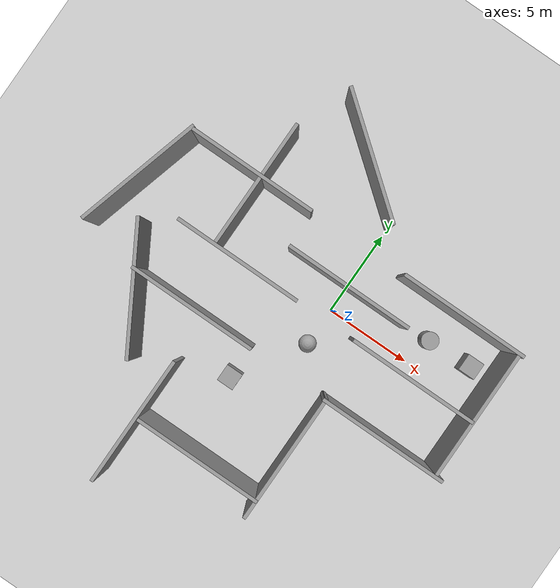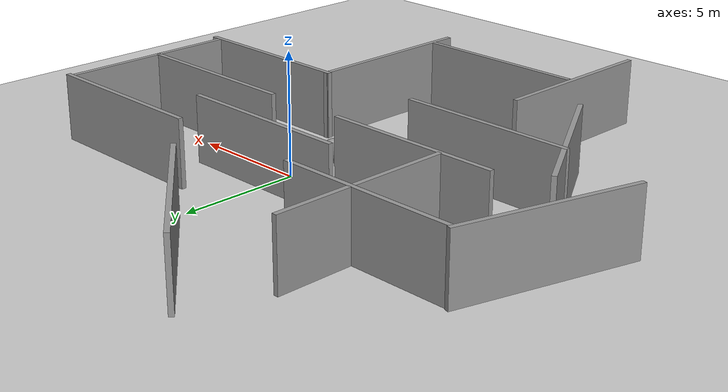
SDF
<sdf version="1.6">
 <world name="default">
  <light name="sun" type="directional">
   <pose>0 0 10 0 -0 0</pose>
   <diffuse>0.8 0.8 0.8 1</diffuse>
   <specular>0.1 0.1 0.1 1</specular>
   <attenuation>
    <range>1000</range>
    <constant>0.9</constant>
    <linear>0.01</linear>
    <quadratic>0.001</quadratic>
   </attenuation>
   <direction>-0.5 0.5 -1</direction>
  </light>
  <model name="ground_plane">
   <static>1</static>
   <link name="link">
    <collision name="collision">
     <geometry><plane><normal>0 0 1</normal><size>100 100</size></plane></geometry>
     <surface><friction><ode><mu>100</mu><mu2>50</mu2></ode></friction></surface>
    </collision>
    <visual name="visual">
     <cast_shadows>0</cast_shadows>
     <geometry><plane><normal>0 0 1</normal><size>100 100</size></plane></geometry>
     <material>
      <script><uri>file://media/materials/scripts/gazebo.material</uri><name>Gazebo/Grey</name></script>
     </material>
    </visual>
   </link>
  </model>
  <gravity>0 0 -9.8</gravity>
  <magnetic_field>6e-06 2.3e-05 -4.2e-05</magnetic_field>
  <atmosphere type="adiabatic"/>
  <physics name="default_physics" default="0" type="ode">
   <max_step_size>0.001</max_step_size>
   <real_time_factor>1</real_time_factor>
   <real_time_update_rate>1000</real_time_update_rate>
  </physics>
  <scene><ambient>0.4 0.4 0.4 1</ambient><background>0.7 0.7 0.7 1</background><shadows>1</shadows></scene>
  <spherical_coordinates>
   <surface_model>EARTH_WGS84</surface_model>
   <latitude_deg>0</latitude_deg>
   <longitude_deg>0</longitude_deg>
   <elevation>0</elevation>
   <heading_deg>0</heading_deg>
  </spherical_coordinates>
  <model name="grey_wall">
   <static>1</static>
   <link name="link">
    <pose>0 0 1.4 0 -0 0</pose>
    <collision name="collision"><geometry><box><size>7.5 0.2 2.8</size></box></geometry></collision>
    <visual name="visual">
     <cast_shadows>0</cast_shadows>
     <geometry><box><size>7.5 0.2 2.8</size></box></geometry>
     <material>
      <script>
       <uri>model://grey_wall/materials/scripts</uri>
       <uri>model://grey_wall/materials/textures</uri>
       <name>vrc/grey_wall</name>
      </script>
     </material>
    </visual>
   </link>
   <pose>-0.079779 1.47879 0 0 -0 0</pose>
  </model>
  <model name="grey_wall_clone">
   <static>1</static>
   <link name="link">
    <pose>0 0 1.4 0 -0 0</pose>
    <collision name="collision"><geometry><box><size>7.5 0.2 2.8</size></box></geometry></collision>
    <visual name="visual">
     <cast_shadows>0</cast_shadows>
     <geometry><box><size>7.5 0.2 2.8</size></box></geometry>
     <material>
      <script>
       <uri>model://grey_wall/materials/scripts</uri>
       <uri>model://grey_wall/materials/textures</uri>
       <name>vrc/grey_wall</name>
      </script>
     </material>
    </visual>
   </link>
   <pose>-5.29603 -10.5565 0 0 -0 1.57</pose>
  </model>
  <model name="grey_wall_clone_0">
   <static>1</static>
   <link name="link">
    <pose>0 0 1.4 0 -0 0</pose>
    <collision name="collision"><geometry><box><size>7.5 0.2 2.8</size></box></geometry></collision>
    <visual name="visual">
     <cast_shadows>0</cast_shadows>
     <geometry><box><size>7.5 0.2 2.8</size></box></geometry>
     <material>
      <script>
       <uri>model://grey_wall/materials/scripts</uri>
       <uri>model://grey_wall/materials/textures</uri>
       <name>vrc/grey_wall</name>
      </script>
     </material>
    </visual>
   </link>
   <pose>-1.41758 -10.3406 0 0 -0 0</pose>
  </model>
  <model name="grey_wall_clone_1">
   <static>1</static>
   <link name="link">
    <pose>0 0 1.4 0 -0 0</pose>
    <collision name="collision"><geometry><box><size>7.5 0.2 2.8</size></box></geometry></collision>
    <visual name="visual">
     <cast_shadows>0</cast_shadows>
     <geometry><box><size>7.5 0.2 2.8</size></box></geometry>
     <material>
      <script>
       <uri>model://grey_wall/materials/scripts</uri>
       <uri>model://grey_wall/materials/textures</uri>
       <name>vrc/grey_wall</name>
      </script>
     </material>
    </visual>
   </link>
   <pose>-2.94531 7.72193 0 0 0 -0.666327</pose>
  </model>
  <model name="grey_wall_clone_2">
   <static>1</static>
   <link name="link">
    <pose>0 0 1.4 0 -0 0</pose>
    <collision name="collision"><geometry><box><size>7.5 0.2 2.8</size></box></geometry></collision>
    <visual name="visual">
     <cast_shadows>0</cast_shadows>
     <geometry><box><size>7.5 0.2 2.8</size></box></geometry>
     <material>
      <script>
       <uri>model://grey_wall/materials/scripts</uri>
       <uri>model://grey_wall/materials/textures</uri>
       <name>vrc/grey_wall</name>
      </script>
     </material>
    </visual>
   </link>
   <pose>-5.60224 -0.641637 0 0 -0 0</pose>
  </model>
  <model name="grey_wall_clone_3">
   <static>1</static>
   <link name="link">
    <pose>0 0 1.4 0 -0 0</pose>
    <collision name="collision"><geometry><box><size>7.5 0.2 2.8</size></box></geometry></collision>
    <visual name="visual">
     <cast_shadows>0</cast_shadows>
     <geometry><box><size>7.5 0.2 2.8</size></box></geometry>
     <material>
      <script>
       <uri>model://grey_wall/materials/scripts</uri>
       <uri>model://grey_wall/materials/textures</uri>
       <name>vrc/grey_wall</name>
      </script>
     </material>
    </visual>
   </link>
   <pose>5.4298 -0.648864 0 0 -0 0</pose>
  </model>
  <model name="grey_wall_clone_4">
   <static>1</static>
   <link name="link">
    <pose>0 0 1.4 0 -0 0</pose>
    <collision name="collision"><geometry><box><size>7.5 0.2 2.8</size></box></geometry></collision>
    <visual name="visual">
     <cast_shadows>0</cast_shadows>
     <geometry><box><size>7.5 0.2 2.8</size></box></geometry>
     <material>
      <script>
       <uri>model://grey_wall/materials/scripts</uri>
       <uri>model://grey_wall/materials/textures</uri>
       <name>vrc/grey_wall</name>
      </script>
     </material>
    </visual>
   </link>
   <pose>-7.61205 3.60455 0 0 -0 0</pose>
  </model>
  <model name="grey_wall_clone_5">
   <static>1</static>
   <link name="link">
    <pose>0 0 1.4 0 -0 0</pose>
    <collision name="collision"><geometry><box><size>7.5 0.2 2.8</size></box></geometry></collision>
    <visual name="visual">
     <cast_shadows>0</cast_shadows>
     <geometry><box><size>7.5 0.2 2.8</size></box></geometry>
     <material>
      <script>
       <uri>model://grey_wall/materials/scripts</uri>
       <uri>model://grey_wall/materials/textures</uri>
       <name>vrc/grey_wall</name>
      </script>
     </material>
    </visual>
   </link>
   <pose>5.67234 3.64138 0 0 -0 0</pose>
  </model>
  <model name="grey_wall_clone_6">
   <static>1</static>
   <link name="link">
    <pose>0 0 1.4 0 -0 0</pose>
    <collision name="collision"><geometry><box><size>7.5 0.2 2.8</size></box></geometry></collision>
    <visual name="visual">
     <cast_shadows>0</cast_shadows>
     <geometry><box><size>7.5 0.2 2.8</size></box></geometry>
     <material>
      <script>
       <uri>model://grey_wall/materials/scripts</uri>
       <uri>model://grey_wall/materials/textures</uri>
       <name>vrc/grey_wall</name>
      </script>
     </material>
    </visual>
   </link>
   <pose>-7.05604 3.12773 0 0 -0 1.57</pose>
  </model>
  <model name="grey_wall_clone_7">
   <static>1</static>
   <link name="link">
    <pose>0 0 1.4 0 -0 0</pose>
    <collision name="collision"><geometry><box><size>7.5 0.2 2.8</size></box></geometry></collision>
    <visual name="visual">
     <cast_shadows>0</cast_shadows>
     <geometry><box><size>7.5 0.2 2.8</size></box></geometry>
     <material>
      <script>
       <uri>model://grey_wall/materials/scripts</uri>
       <uri>model://grey_wall/materials/textures</uri>
       <name>vrc/grey_wall</name>
      </script>
     </material>
    </visual>
   </link>
   <pose>9.14609 -0.194442 0 0 -0 1.57</pose>
  </model>
  <model name="grey_wall_clone_8">
   <static>1</static>
   <link name="link">
    <pose>0 0 1.4 0 -0 0</pose>
    <collision name="collision"><geometry><box><size>7.5 0.2 2.8</size></box></geometry></collision>
    <visual name="visual">
     <cast_shadows>0</cast_shadows>
     <geometry><box><size>7.5 0.2 2.8</size></box></geometry>
     <material>
      <script>
       <uri>model://grey_wall/materials/scripts</uri>
       <uri>model://grey_wall/materials/textures</uri>
       <name>vrc/grey_wall</name>
      </script>
     </material>
    </visual>
   </link>
   <pose>-6.14069 -4.03298 0 0 -0 0</pose>
  </model>
  <model name="grey_wall_clone_9">
   <static>1</static>
   <link name="link">
    <pose>0 0 1.4 0 -0 0</pose>
    <collision name="collision"><geometry><box><size>7.5 0.2 2.8</size></box></geometry></collision>
    <visual name="visual">
     <cast_shadows>0</cast_shadows>
     <geometry><box><size>7.5 0.2 2.8</size></box></geometry>
     <material>
      <script>
       <uri>model://grey_wall/materials/scripts</uri>
       <uri>model://grey_wall/materials/textures</uri>
       <name>vrc/grey_wall</name>
      </script>
     </material>
    </visual>
   </link>
   <pose>5.86823 -4.04531 0 0 -0 0</pose>
  </model>
  <model name="grey_wall_clone_10">
   <static>1</static>
   <link name="link">
    <pose>0 0 1.4 0 -0 0</pose>
    <collision name="collision"><geometry><box><size>7.5 0.2 2.8</size></box></geometry></collision>
    <visual name="visual">
     <cast_shadows>0</cast_shadows>
     <geometry><box><size>7.5 0.2 2.8</size></box></geometry>
     <material>
      <script>
       <uri>model://grey_wall/materials/scripts</uri>
       <uri>model://grey_wall/materials/textures</uri>
       <name>vrc/grey_wall</name>
      </script>
     </material>
    </visual>
   </link>
   <pose>2.26323 -7.66943 0 0 -0 1.57</pose>
  </model>
  <model name="grey_wall_clone_11">
   <static>1</static>
   <link name="link">
    <pose>0 0 1.4 0 -0 0</pose>
    <collision name="collision"><geometry><box><size>7.5 0.2 2.8</size></box></geometry></collision>
    <visual name="visual">
     <cast_shadows>0</cast_shadows>
     <geometry><box><size>7.5 0.2 2.8</size></box></geometry>
     <material>
      <script>
       <uri>model://grey_wall/materials/scripts</uri>
       <uri>model://grey_wall/materials/textures</uri>
       <name>vrc/grey_wall</name>
      </script>
     </material>
    </visual>
   </link>
   <pose>-12.4084 0.162192 0 0 -0 1.29673</pose>
  </model>
  <model name="grey_wall_clone_12">
   <static>1</static>
   <link name="link">
    <pose>0 0 1.4 0 -0 0</pose>
    <collision name="collision"><geometry><box><size>7.5 0.2 2.8</size></box></geometry></collision>
    <visual name="visual">
     <cast_shadows>0</cast_shadows>
     <geometry><box><size>7.5 0.2 2.8</size></box></geometry>
     <material>
      <script>
       <uri>model://grey_wall/materials/scripts</uri>
       <uri>model://grey_wall/materials/textures</uri>
       <name>vrc/grey_wall</name>
      </script>
     </material>
    </visual>
   </link>
   <pose>-9.21832 -4.93687 0 0 -0 2.09793</pose>
  </model>
  <model name="unit_cylinder">
   <pose>5.30109 1.69321 0.499997 4e-06 3e-06 -0</pose>
   <link name="link">
    <inertial>
     <mass>1</mass>
     <inertia><ixx>0.145833</ixx><ixy>0</ixy><ixz>0</ixz><iyy>0.145833</iyy><iyz>0</iyz><izz>0.125</izz></inertia>
    </inertial>
    <collision name="collision">
     <geometry><cylinder><radius>0.5</radius><length>1</length></cylinder></geometry>
    </collision>
    <visual name="visual">
     <geometry><cylinder><radius>0.5</radius><length>1</length></cylinder></geometry>
     <material>
      <script><name>Gazebo/Grey</name><uri>file://media/materials/scripts/gazebo.material</uri></script>
     </material>
    </visual>
   </link>
  </model>
  <model name="unit_box">
   <pose>-2.50558 -6.11762 0.499995 0 1e-05 0</pose>
   <link name="link">
    <inertial>
     <mass>1</mass>
     <inertia>
      <ixx>0.166667</ixx>
      <ixy>0</ixy>
      <ixz>0</ixz>
      <iyy>0.166667</iyy>
      <iyz>0</iyz>
      <izz>0.166667</izz>
     </inertia>
    </inertial>
    <collision name="collision"><geometry><box><size>1 1 1</size></box></geometry></collision>
    <visual name="visual">
     <geometry><box><size>1 1 1</size></box></geometry>
     <material>
      <script><name>Gazebo/Grey</name><uri>file://media/materials/scripts/gazebo.material</uri></script>
     </material>
    </visual>
   </link>
  </model>
  <model name="unit_box_0">
   <pose>7.95605 1.80221 0.499995 -1e-05 0 0</pose>
   <link name="link">
    <inertial>
     <mass>1</mass>
     <inertia>
      <ixx>0.166667</ixx>
      <ixy>0</ixy>
      <ixz>0</ixz>
      <iyy>0.166667</iyy>
      <iyz>0</iyz>
      <izz>0.166667</izz>
     </inertia>
    </inertial>
    <collision name="collision"><geometry><box><size>1 1 1</size></box></geometry></collision>
    <visual name="visual">
     <geometry><box><size>1 1 1</size></box></geometry>
     <material>
      <script><name>Gazebo/Grey</name><uri>file://media/materials/scripts/gazebo.material</uri></script>
     </material>
    </visual>
   </link>
  </model>
  <model name="unit_sphere">
   <pose>-0.059582 -2.23545 0.5 0 -0 0</pose>
   <link name="link">
    <inertial>
     <mass>1</mass>
     <inertia><ixx>0.1</ixx><ixy>0</ixy><ixz>0</ixz><iyy>0.1</iyy><iyz>0</iyz><izz>0.1</izz></inertia>
    </inertial>
    <collision name="collision"><geometry><sphere><radius>0.5</radius></sphere></geometry></collision>
    <visual name="visual">
     <geometry><sphere><radius>0.5</radius></sphere></geometry>
     <material>
      <script><name>Gazebo/Grey</name><uri>file://media/materials/scripts/gazebo.material</uri></script>
     </material>
    </visual>
   </link>
  </model>
 </world>
</sdf>
